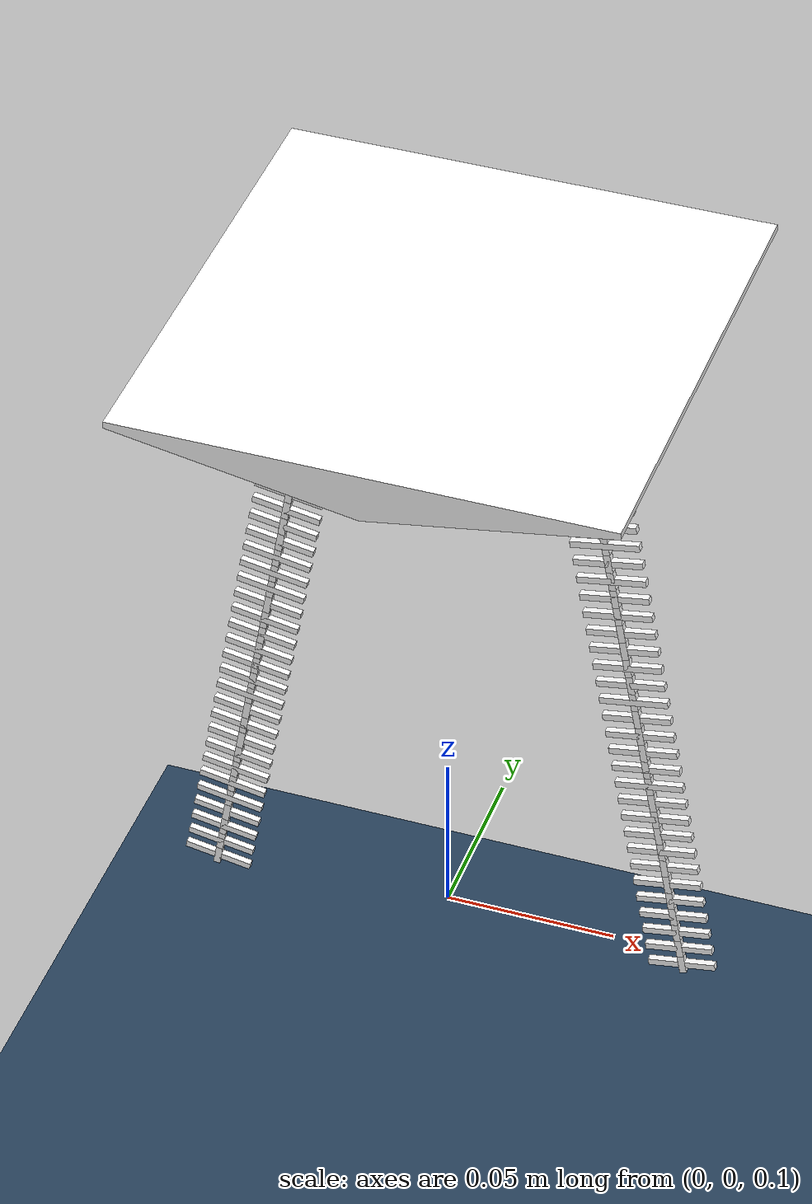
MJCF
<mujoco>
  <compiler autolimits="true"/>
  <option timestep="0.01" gravity="0 0 -9.81"/>

  <asset>
    <texture name="grid" type="2d" builtin="checker" width="512" height="512" rgb1=".1 .2 .3" rgb2=".2 .3 .4"/>
    <material name="grid" texture="grid" texrepeat="10 10" texuniform="true" reflectance=".2"/>
    <mesh name="palm" scale=".001 .001 .001"
      vertex=" 70   70   8.17
              -70   70   8.17
               70   -70   8.17
               -70   -70   8.17
               70   70   6.17
              -70   70   6.17
               70   -70   6.17
               -70   -70   6.17
               0   70   -6.17
               0   -70   -6.17"/>
  </asset>

  <default>
    <joint type="hinge" axis="0 1 0" damping=".03" actuatorfrcrange="-0.5 0.5"/>
    <default class="cross tate">
      <geom type="box" size=".001 .001 .003" rgba="1 1 1 1" pos="0 0 -.003"/>
    </default>
    <default class="cross yoko">
      <geom type="box" size=".01 .001 .001" rgba="1 1 1 1" pos="0 0 -.003"/>
    </default>
  </default>

  <worldbody>
    <geom type="plane" size="3 3 .01" material="grid"/>
    <body name="wirearm" pos="0 0 .3">
      <light pos="0 0 2" diffuse="1 1 1" ambient="0.2 0.2 0.2"/>
      <light name="top light" pos="0 0 2" mode="trackcom" diffuse=".4 .4 .4"/>
      <geom name="palm" type="mesh" mesh="palm" rgba="1 1 1 1"/>
      <body name="right link1" pos=".035 0 0" quat="0 -0.08716 0 0.99619" >
        <joint name="right link1"/>
        <geom class="cross tate"/>
        <geom class="cross yoko"/>
        <body name="right link2" pos="0 0 -.006">
          <joint name="right link2"/>
          <geom class="cross tate"/>
          <geom class="cross yoko"/>
          <body name="right link3" pos="0 0 -.006">
            <joint name="right link3"/>
            <geom class="cross tate"/>
            <geom class="cross yoko"/>
            <body name="right link4" pos="0 0 -.006">
              <joint name="right link4"/>
              <geom class="cross tate"/>
              <geom class="cross yoko"/>
              <body name="right link5" pos="0 0 -.006">
                <joint name="right link5"/>
                <geom class="cross tate"/>
                <geom class="cross yoko"/>
                <body name="right link6" pos="0 0 -.006">
                  <joint name="right link6"/>
                  <geom class="cross tate"/>
                  <geom class="cross yoko"/>
                  <body name="right link7" pos="0 0 -.006">
                    <joint name="right link7"/>
                    <geom class="cross tate"/>
                    <geom class="cross yoko"/>
                    <body name="right link8" pos="0 0 -.006">
                      <joint name="right link8"/>
                      <geom class="cross tate"/>
                      <geom class="cross yoko"/>
                      <body name="right link9" pos="0 0 -.006">
                        <joint name="right link9"/>
                        <geom class="cross tate"/>
                        <geom class="cross yoko"/>
                        <body name="right link10" pos="0 0 -.006">
                          <joint name="right link10"/>
                          <geom class="cross tate"/>
                          <geom class="cross yoko"/>
                          <body name="right link11" pos="0 0 -.006">
                            <joint name="right link11"/>
                            <geom class="cross tate"/>
                            <geom class="cross yoko"/>
                            <body name="right link12" pos="0 0 -.006">
                              <joint name="right link12"/>
                              <geom class="cross tate"/>
                              <geom class="cross yoko"/>
                              <body name="right link13" pos="0 0 -.006">
                                <joint name="right link13"/>
                                <geom class="cross tate"/>
                                <geom class="cross yoko"/>
                                <body name="right link14" pos="0 0 -.006">
                                  <joint name="right link14"/>
                                  <geom class="cross tate"/>
                                  <geom class="cross yoko"/>
                                  <body name="right link15" pos="0 0 -.006">
                                    <joint name="right link15"/>
                                    <geom class="cross tate"/>
                                    <geom class="cross yoko"/>
                                    <body name="right link16" pos="0 0 -.006">
                                      <joint name="right link16"/>
                                      <geom class="cross tate"/>
                                      <geom class="cross yoko"/>
                                      <body name="right link17" pos="0 0 -.006">
                                        <joint name="right link17"/>
                                        <geom class="cross tate"/>
                                        <geom class="cross yoko"/>
                                        <body name="right link18" pos="0 0 -.006">
                                          <joint name="right link18"/>
                                          <geom class="cross tate"/>
                                          <geom class="cross yoko"/>
                                          <body name="right link19" pos="0 0 -.006">
                                            <joint name="right link19"/>
                                            <geom class="cross tate"/>
                                            <geom class="cross yoko"/>
                                            <body name="right link20" pos="0 0 -.006">
                                              <joint name="right link20"/>
                                              <geom class="cross tate"/>
                                              <geom class="cross yoko"/>
                                              <body name="right link21" pos="0 0 -.006">
                                                <joint name="right link21"/>
                                                <geom class="cross tate"/>
                                                <geom class="cross yoko"/>
                                                <body name="right link22" pos="0 0 -.006">
                                                  <joint name="right link22"/>
                                                  <geom class="cross tate"/>
                                                  <geom class="cross yoko"/>
                                                  <body name="right link23" pos="0 0 -.006">
                                                    <joint name="right link23"/>
                                                    <geom class="cross tate"/>
                                                    <geom class="cross yoko"/>
                                                    <body name="right link24" pos="0 0 -.006">
                                                      <joint name="right link24"/>
                                                      <geom class="cross tate"/>
                                                      <geom class="cross yoko"/>
                                                      <body name="right link25" pos="0 0 -.006">
                                                        <joint name="right link25"/>
                                                        <geom class="cross tate"/>
                                                        <geom class="cross yoko"/>
                                                        <body name="right link26" pos="0 0 -.006">
                                                          <joint name="right link26"/>
                                                          <geom class="cross tate"/>
                                                          <geom class="cross yoko"/>
                                                          <body name="right link27" pos="0 0 -.006">
                                                            <joint name="right link27"/>
                                                            <geom class="cross tate"/>
                                                            <geom class="cross yoko"/>
                                                            <body name="right link28" pos="0 0 -.006">
                                                              <joint name="right link28"/>
                                                              <geom class="cross tate"/>
                                                              <geom class="cross yoko"/>
                                                              <body name="right link29" pos="0 0 -.006">
                                                                <joint name="right link29"/>
                                                                <geom class="cross tate"/>
                                                                <geom class="cross yoko"/>
                                                                <body name="right link30" pos="0 0 -.006">
                                                                  <joint name="right link30"/>
                                                                  <geom class="cross tate"/>
                                                                  <geom class="cross yoko"/>
                                                                  <body name="right link31" pos="0 0 -.006">
                                                                    <joint name="right link31"/>
                                                                    <geom class="cross tate"/>
                                                                    <geom class="cross yoko"/>
                                                                    <body name="right link32" pos="0 0 -.006">
                                                                      <joint name="right link32"/>
                                                                      <geom class="cross tate"/>
                                                                      <geom class="cross yoko"/>
                                                                      <body name="right link33" pos="0 0 -.006">
                                                                        <joint name="right link33"/>
                                                                        <geom class="cross tate"/>
                                                                        <geom class="cross yoko"/>
                                                                        <body name="right link34" pos="0 0 -.006">
                                                                          <joint name="right link34"/>
                                                                          <geom class="cross tate"/>
                                                                          <geom class="cross yoko"/>
                                                                          <body name="right link35" pos="0 0 -.006">
                                                                            <joint name="right link35"/>
                                                                            <geom class="cross tate"/>
                                                                            <geom class="cross yoko"/>
                                                                          </body>
                                                                        </body>
                                                                      </body>
                                                                    </body>
                                                                  </body>
                                                                </body>
                                                              </body>
                                                            </body>
                                                          </body>
                                                        </body>
                                                      </body>
                                                    </body>
                                                  </body>
                                                </body>
                                              </body>
                                            </body>
                                          </body>
                                        </body>
                                      </body>
                                    </body>
                                  </body>
                                </body>
                              </body>
                            </body>
                          </body>
                        </body>
                      </body>
                    </body>
                  </body>
                </body>
              </body>
            </body>
          </body>
        </body>
      </body>
      <body name="left link1" pos="-.035 0 0" quat="0.9962 0 0.0872 0">
        <joint name="left link1"/>
        <geom class="cross tate" pos="0 0 -.003"/>
        <geom class="cross yoko" pos="0 0 -.003"/>
        <body name="left link2" pos="0 0 -.006">
          <joint name="left link2"/>
          <geom class="cross tate"/>
          <geom class="cross yoko"/>
          <body name="left link3" pos="0 0 -.006">
            <joint name="left link3"/>
            <geom class="cross tate"/>
            <geom class="cross yoko"/>
            <body name="left link4" pos="0 0 -.006">
              <joint name="left link4"/>
              <geom class="cross tate"/>
              <geom class="cross yoko"/>
              <body name="left link5" pos="0 0 -.006">
                <joint name="left link5"/>
                <geom class="cross tate"/>
                <geom class="cross yoko"/>
                <body name="left link6" pos="0 0 -.006">
                  <joint name="left link6"/>
                  <geom class="cross tate"/>
                  <geom class="cross yoko"/>
                  <body name="left link7" pos="0 0 -.006">
                    <joint name="left link7"/>
                    <geom class="cross tate"/>
                    <geom class="cross yoko"/>
                    <body name="left link8" pos="0 0 -.006">
                      <joint name="left link8"/>
                      <geom class="cross tate"/>
                      <geom class="cross yoko"/>
                      <body name="left link9" pos="0 0 -.006">
                        <joint name="left link9"/>
                        <geom class="cross tate"/>
                        <geom class="cross yoko"/>
                        <body name="left link10" pos="0 0 -.006">
                          <joint name="left link10"/>
                          <geom class="cross tate"/>
                          <geom class="cross yoko"/>
                          <body name="left link11" pos="0 0 -.006">
                            <joint name="left link11"/>
                            <geom class="cross tate"/>
                            <geom class="cross yoko"/>
                            <body name="left link12" pos="0 0 -.006">
                              <joint name="left link12"/>
                              <geom class="cross tate"/>
                              <geom class="cross yoko"/>
                              <body name="left link13" pos="0 0 -.006">
                                <joint name="left link13"/>
                                <geom class="cross tate"/>
                                <geom class="cross yoko"/>
                                <body name="left link14" pos="0 0 -.006">
                                  <joint name="left link14"/>
                                  <geom class="cross tate"/>
                                  <geom class="cross yoko"/>
                                  <body name="left link15" pos="0 0 -.006">
                                    <joint name="left link15"/>
                                    <geom class="cross tate"/>
                                    <geom class="cross yoko"/>
                                    <body name="left link16" pos="0 0 -.006">
                                      <joint name="left link16"/>
                                      <geom class="cross tate"/>
                                      <geom class="cross yoko"/>
                                      <body name="left link17" pos="0 0 -.006">
                                        <joint name="left link17"/>
                                        <geom class="cross tate"/>
                                        <geom class="cross yoko"/>
                                        <body name="left link18" pos="0 0 -.006">
                                          <joint name="left link18"/>
                                          <geom class="cross tate"/>
                                          <geom class="cross yoko"/>
                                          <body name="left link19" pos="0 0 -.006">
                                            <joint name="left link19"/>
                                            <geom class="cross tate"/>
                                            <geom class="cross yoko"/>
                                            <body name="left link20" pos="0 0 -.006">
                                              <joint name="left link20"/>
                                              <geom class="cross tate"/>
                                              <geom class="cross yoko"/>
                                              <body name="left link21" pos="0 0 -.006">
                                                <joint name="left link21"/>
                                                <geom class="cross tate"/>
                                                <geom class="cross yoko"/>
                                                <body name="left link22" pos="0 0 -.006">
                                                  <joint name="left link22"/>
                                                  <geom class="cross tate"/>
                                                  <geom class="cross yoko"/>
                                                  <body name="left link23" pos="0 0 -.006">
                                                    <joint name="left link23"/>
                                                    <geom class="cross tate"/>
                                                    <geom class="cross yoko"/>
                                                    <body name="left link24" pos="0 0 -.006">
                                                      <joint name="left link24"/>
                                                      <geom class="cross tate"/>
                                                      <geom class="cross yoko"/>
                                                      <body name="left link25" pos="0 0 -.006">
                                                        <joint name="left link25"/>
                                                        <geom class="cross tate"/>
                                                        <geom class="cross yoko"/>
                                                        <body name="left link26" pos="0 0 -.006">
                                                          <joint name="left link26"/>
                                                          <geom class="cross tate"/>
                                                          <geom class="cross yoko"/>
                                                          <body name="left link27" pos="0 0 -.006">
                                                            <joint name="left link27"/>
                                                            <geom class="cross tate"/>
                                                            <geom class="cross yoko"/>
                                                            <body name="left link28" pos="0 0 -.006">
                                                              <joint name="left link28"/>
                                                              <geom class="cross tate"/>
                                                              <geom class="cross yoko"/>
                                                              <body name="left link29" pos="0 0 -.006">
                                                                <joint name="left link29"/>
                                                                <geom class="cross tate"/>
                                                                <geom class="cross yoko"/>
                                                                <body name="left link30" pos="0 0 -.006">
                                                                  <joint name="left link30"/>
                                                                  <geom class="cross tate"/>
                                                                  <geom class="cross yoko"/>
                                                                  <body name="left link31" pos="0 0 -.006">
                                                                    <joint name="left link31"/>
                                                                    <geom class="cross tate"/>
                                                                    <geom class="cross yoko"/>
                                                                    <body name="left link32" pos="0 0 -.006">
                                                                      <joint name="left link32"/>
                                                                      <geom class="cross tate"/>
                                                                      <geom class="cross yoko"/>
                                                                      <body name="left link33" pos="0 0 -.006">
                                                                        <joint name="left link33"/>
                                                                        <geom class="cross tate"/>
                                                                        <geom class="cross yoko"/>
                                                                        <body name="left link34" pos="0 0 -.006">
                                                                          <joint name="left link34"/>
                                                                          <geom class="cross tate"/>
                                                                          <geom class="cross yoko"/>
                                                                          <body name="left link35" pos="0 0 -.006">
                                                                            <joint name="left link35"/>
                                                                            <geom class="cross tate"/>
                                                                            <geom class="cross yoko"/>
                                                                          </body>
                                                                        </body>
                                                                      </body>
                                                                    </body>
                                                                  </body>
                                                                </body>
                                                              </body>
                                                            </body>
                                                          </body>
                                                        </body>
                                                      </body>
                                                    </body>
                                                  </body>
                                                </body>
                                              </body>
                                            </body>
                                          </body>
                                        </body>
                                      </body>
                                    </body>
                                  </body>
                                </body>
                              </body>
                            </body>
                          </body>
                        </body>
                      </body>
                    </body>
                  </body>
                </body>
              </body>
            </body>
          </body>
        </body>
      </body>
    </body>
  </worldbody>
<actuator>
  <position joint="right link1" ctrlrange="-0.35 0.35" gear="1"/>
  <position joint="right link2" ctrlrange="-0.35 0.35" gear="1"/>
  <position joint="right link3" ctrlrange="-0.35 0.35" gear="1"/>
  <position joint="right link4" ctrlrange="-0.35 0.35" gear="1"/>
  <position joint="right link5" ctrlrange="-0.35 0.35" gear="1"/>
  <position joint="right link6" ctrlrange="-0.35 0.35" gear="1"/>
  <position joint="right link7" ctrlrange="-0.35 0.35" gear="1"/>
  <position joint="right link8" ctrlrange="-0.35 0.35" gear="1"/>
  <position joint="right link9" ctrlrange="-0.35 0.35" gear="1"/>
  <position joint="right link10" ctrlrange="-0.35 0.35" gear="1"/>
  <position joint="right link11" ctrlrange="-0.35 0.35" gear="1"/>
  <position joint="right link12" ctrlrange="-0.35 0.35" gear="1"/>
  <position joint="right link13" ctrlrange="-0.35 0.35" gear="1"/>
  <position joint="right link14" ctrlrange="-0.35 0.35" gear="1"/>
  <position joint="right link15" ctrlrange="-0.35 0.35" gear="1"/>
  <position joint="right link16" ctrlrange="-0.35 0.35" gear="1"/>
  <position joint="right link17" ctrlrange="-0.35 0.35" gear="1"/>
  <position joint="right link18" ctrlrange="-0.35 0.35" gear="1"/>
  <position joint="right link19" ctrlrange="-0.35 0.35" gear="1"/>
  <position joint="right link20" ctrlrange="-0.35 0.35" gear="1"/>
  <position joint="right link21" ctrlrange="-0.35 0.35" gear="1"/>
  <position joint="right link22" ctrlrange="-0.35 0.35" gear="1"/>
  <position joint="right link23" ctrlrange="-0.35 0.35" gear="1"/>
  <position joint="right link24" ctrlrange="-0.35 0.35" gear="1"/>
  <position joint="right link25" ctrlrange="-0.35 0.35" gear="1"/>
  <position joint="right link26" ctrlrange="-0.35 0.35" gear="1"/>
  <position joint="right link27" ctrlrange="-0.35 0.35" gear="1"/>
  <position joint="right link28" ctrlrange="-0.35 0.35" gear="1"/>
  <position joint="right link29" ctrlrange="-0.35 0.35" gear="1"/>
  <position joint="right link30" ctrlrange="-0.35 0.35" gear="1"/>
  <position joint="right link31" ctrlrange="-0.35 0.35" gear="1"/>
  <position joint="right link32" ctrlrange="-0.35 0.35" gear="1"/>
  <position joint="right link33" ctrlrange="-0.35 0.35" gear="1"/>
  <position joint="right link34" ctrlrange="-0.35 0.35" gear="1"/>
  <position joint="right link35" ctrlrange="-0.35 0.35" gear="1"/>
  <position joint="left link1" ctrlrange="-0.35 0.35" gear="1"/>
  <position joint="left link2" ctrlrange="-0.35 0.35" gear="1"/>
  <position joint="left link3" ctrlrange="-0.35 0.35" gear="1"/>
  <position joint="left link4" ctrlrange="-0.35 0.35" gear="1"/>
  <position joint="left link5" ctrlrange="-0.35 0.35" gear="1"/>
  <position joint="left link6" ctrlrange="-0.35 0.35" gear="1"/>
  <position joint="left link7" ctrlrange="-0.35 0.35" gear="1"/>
  <position joint="left link8" ctrlrange="-0.35 0.35" gear="1"/>
  <position joint="left link9" ctrlrange="-0.35 0.35" gear="1"/>
  <position joint="left link10" ctrlrange="-0.35 0.35" gear="1"/>
  <position joint="left link11" ctrlrange="-0.35 0.35" gear="1"/>
  <position joint="left link12" ctrlrange="-0.35 0.35" gear="1"/>
  <position joint="left link13" ctrlrange="-0.35 0.35" gear="1"/>
  <position joint="left link14" ctrlrange="-0.35 0.35" gear="1"/>
  <position joint="left link15" ctrlrange="-0.35 0.35" gear="1"/>
  <position joint="left link16" ctrlrange="-0.35 0.35" gear="1"/>
  <position joint="left link17" ctrlrange="-0.35 0.35" gear="1"/>
  <position joint="left link18" ctrlrange="-0.35 0.35" gear="1"/>
  <position joint="left link19" ctrlrange="-0.35 0.35" gear="1"/>
  <position joint="left link20" ctrlrange="-0.35 0.35" gear="1"/>
  <position joint="left link21" ctrlrange="-0.35 0.35" gear="1"/>
  <position joint="left link22" ctrlrange="-0.35 0.35" gear="1"/>
  <position joint="left link23" ctrlrange="-0.35 0.35" gear="1"/>
  <position joint="left link24" ctrlrange="-0.35 0.35" gear="1"/>
  <position joint="left link25" ctrlrange="-0.35 0.35" gear="1"/>
  <position joint="left link26" ctrlrange="-0.35 0.35" gear="1"/>
  <position joint="left link27" ctrlrange="-0.35 0.35" gear="1"/>
  <position joint="left link28" ctrlrange="-0.35 0.35" gear="1"/>
  <position joint="left link29" ctrlrange="-0.35 0.35" gear="1"/>
  <position joint="left link30" ctrlrange="-0.35 0.35" gear="1"/>
  <position joint="left link31" ctrlrange="-0.35 0.35" gear="1"/>
  <position joint="left link32" ctrlrange="-0.35 0.35" gear="1"/>
  <position joint="left link33" ctrlrange="-0.35 0.35" gear="1"/>
  <position joint="left link34" ctrlrange="-0.35 0.35" gear="1"/>
  <position joint="left link35" ctrlrange="-0.35 0.35" gear="1"/>
</actuator>

</mujoco>
